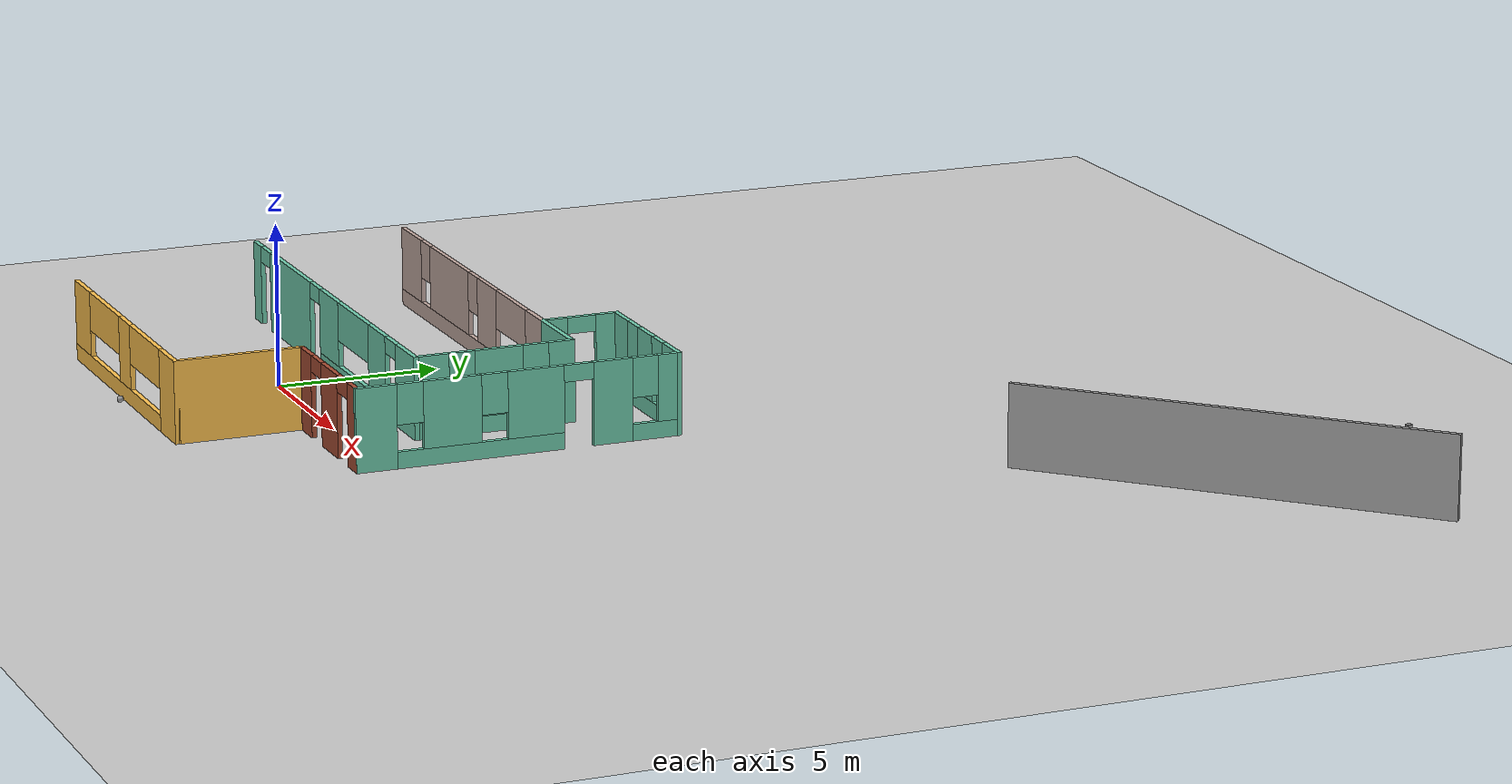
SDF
<sdf version="1.6">
 <world name="default">
  <model name="ground_plane">
   <static>1</static>
   <link name="link">
    <collision name="collision">
     <geometry><plane><normal>0 0 1</normal><size>100 100</size></plane></geometry>
     <surface>
      <contact><collide_bitmask>65535</collide_bitmask></contact>
      <friction><ode><mu>100</mu><mu2>50</mu2></ode></friction>
     </surface>
    </collision>
    <visual name="visual">
     <cast_shadows>0</cast_shadows>
     <geometry><plane><normal>0 0 1</normal><size>100 100</size></plane></geometry>
     <material>
      <script><uri>file://media/materials/scripts/gazebo.material</uri><name>Gazebo/Grey</name></script>
     </material>
    </visual>
   </link>
  </model>
  <model name="building">
   <pose>7.75122 8.09541 0 0 -0 0</pose>
   <link name="Wall_0">
    <pose>-8.08622 -12.7354 0 0 -0 3.14159</pose>
    <visual name="Wall_0_Visual_0">
     <pose>-4.28694 0 1.25 0 -0 0</pose>
     <geometry><box><size>1.42611 0.15 2.5</size></box></geometry>
     <material>
      <script><uri>file://media/materials/scripts/gazebo.material</uri><name>Gazebo/Grey</name></script>
      <ambient>1 0.764706 0.305882 1</ambient>
     </material>
     <meta><layer>0</layer></meta>
    </visual>
    <collision name="Wall_0_Collision_0">
     <geometry><box><size>1.42611 0.15 2.5</size></box></geometry>
     <pose>-4.28694 0 1.25 0 -0 0</pose>
    </collision>
    <visual name="Wall_0_Visual_1">
     <pose>0.713057 0 0.25 0 -0 0</pose>
     <geometry><box><size>8.57389 0.15 0.5</size></box></geometry>
     <material>
      <script><uri>file://media/materials/scripts/gazebo.material</uri><name>Gazebo/Grey</name></script>
      <ambient>1 0.764706 0.305882 1</ambient>
     </material>
     <meta><layer>0</layer></meta>
    </visual>
    <collision name="Wall_0_Collision_1">
     <geometry><box><size>8.57389 0.15 0.5</size></box></geometry>
     <pose>0.713057 0 0.25 0 -0 0</pose>
    </collision>
    <visual name="Wall_0_Visual_2">
     <pose>-0.101719 0 1.5 0 -0 0</pose>
     <geometry><box><size>1.08588 0.15 2</size></box></geometry>
     <material>
      <script><uri>file://media/materials/scripts/gazebo.material</uri><name>Gazebo/Grey</name></script>
      <ambient>1 0.764706 0.305882 1</ambient>
     </material>
     <meta><layer>0</layer></meta>
    </visual>
    <collision name="Wall_0_Collision_2">
     <geometry><box><size>1.08588 0.15 2</size></box></geometry>
     <pose>-0.101719 0 1.5 0 -0 0</pose>
    </collision>
    <visual name="Wall_0_Visual_3">
     <pose>4.22325 0 1.5 0 -0 0</pose>
     <geometry><box><size>1.55351 0.15 2</size></box></geometry>
     <material>
      <script><uri>file://media/materials/scripts/gazebo.material</uri><name>Gazebo/Grey</name></script>
      <ambient>1 0.764706 0.305882 1</ambient>
     </material>
     <meta><layer>0</layer></meta>
    </visual>
    <collision name="Wall_0_Collision_3">
     <geometry><box><size>1.55351 0.15 2</size></box></geometry>
     <pose>4.22325 0 1.5 0 -0 0</pose>
    </collision>
    <visual name="Wall_0_Visual_4">
     <pose>-2.10927 0 1.9 0 -0 0</pose>
     <geometry><box><size>2.92923 0.15 1.2</size></box></geometry>
     <material>
      <script><uri>file://media/materials/scripts/gazebo.material</uri><name>Gazebo/Grey</name></script>
      <ambient>1 0.764706 0.305882 1</ambient>
     </material>
     <meta><layer>0</layer></meta>
    </visual>
    <collision name="Wall_0_Collision_4">
     <geometry><box><size>2.92923 0.15 1.2</size></box></geometry>
     <pose>-2.10927 0 1.9 0 -0 0</pose>
    </collision>
    <visual name="Wall_0_Visual_5">
     <pose>1.94386 0 1.9 0 -0 0</pose>
     <geometry><box><size>3.00527 0.15 1.2</size></box></geometry>
     <material>
      <script><uri>file://media/materials/scripts/gazebo.material</uri><name>Gazebo/Grey</name></script>
      <ambient>1 0.764706 0.305882 1</ambient>
     </material>
     <meta><layer>0</layer></meta>
    </visual>
    <collision name="Wall_0_Collision_5">
     <geometry><box><size>3.00527 0.15 1.2</size></box></geometry>
     <pose>1.94386 0 1.9 0 -0 0</pose>
    </collision>
   </link>
   <link name="Wall_19">
    <collision name="Wall_19_Collision">
     <geometry><box><size>13.2246 0.15 2.5</size></box></geometry>
     <pose>0 0 1.25 0 -0 0</pose>
    </collision>
    <visual name="Wall_19_Visual">
     <pose>0 0 1.25 0 -0 0</pose>
     <geometry><box><size>13.2246 0.15 2.5</size></box></geometry>
     <material>
      <script><uri>file://media/materials/scripts/gazebo.material</uri><name>Gazebo/Grey</name></script>
      <ambient>1 1 1 1</ambient>
     </material>
     <meta><layer>0</layer></meta>
    </visual>
    <pose>13.1096 12.9319 0 0 0 -2.37763</pose>
   </link>
   <link name="Wall_20">
    <collision name="Wall_20_Collision">
     <geometry><box><size>0.15 0.15 2.5</size></box></geometry>
     <pose>0 0 1.25 0 -0 0</pose>
    </collision>
    <visual name="Wall_20_Visual">
     <pose>0 0 1.25 0 -0 0</pose>
     <geometry><box><size>0.15 0.15 2.5</size></box></geometry>
     <material>
      <script><uri>file://media/materials/scripts/gazebo.material</uri><name>Gazebo/Grey</name></script>
      <ambient>1 1 1 1</ambient>
     </material>
     <meta><layer>0</layer></meta>
    </visual>
    <pose>16.475 16.6544 0 0 -0 0</pose>
   </link>
   <link name="Wall_22">
    <pose>1.65837 -3.96041 0 0 -0 1.5708</pose>
    <visual name="Wall_22_Visual_0">
     <pose>-4.3788 0 1.25 0 -0 0</pose>
     <geometry><box><size>1.2424 0.15 2.5</size></box></geometry>
     <material>
      <script><uri>file://media/materials/scripts/gazebo.material</uri><name>Gazebo/Grey</name></script>
      <ambient>0.435294 0.796078 0.67451 1</ambient>
     </material>
     <meta><layer>0</layer></meta>
    </visual>
    <collision name="Wall_22_Collision_0">
     <geometry><box><size>1.2424 0.15 2.5</size></box></geometry>
     <pose>-4.3788 0 1.25 0 -0 0</pose>
    </collision>
    <visual name="Wall_22_Visual_1">
     <pose>2.84528 0 1.25 0 -0 0</pose>
     <geometry><box><size>1.21212 0.15 2.5</size></box></geometry>
     <material>
      <script><uri>file://media/materials/scripts/gazebo.material</uri><name>Gazebo/Grey</name></script>
      <ambient>0.435294 0.796078 0.67451 1</ambient>
     </material>
     <meta><layer>0</layer></meta>
    </visual>
    <collision name="Wall_22_Collision_1">
     <geometry><box><size>1.21212 0.15 2.5</size></box></geometry>
     <pose>2.84528 0 1.25 0 -0 0</pose>
    </collision>
    <visual name="Wall_22_Visual_2">
     <pose>-1.20919 0 0.25 0 -0 0</pose>
     <geometry><box><size>5.09682 0.15 0.5</size></box></geometry>
     <material>
      <script><uri>file://media/materials/scripts/gazebo.material</uri><name>Gazebo/Grey</name></script>
      <ambient>0.435294 0.796078 0.67451 1</ambient>
     </material>
     <meta><layer>0</layer></meta>
    </visual>
    <collision name="Wall_22_Collision_2">
     <geometry><box><size>5.09682 0.15 0.5</size></box></geometry>
     <pose>-1.20919 0 0.25 0 -0 0</pose>
    </collision>
    <visual name="Wall_22_Visual_3">
     <pose>4.22567 0 0.25 0 -0 0</pose>
     <geometry><box><size>1.54866 0.15 0.5</size></box></geometry>
     <material>
      <script><uri>file://media/materials/scripts/gazebo.material</uri><name>Gazebo/Grey</name></script>
      <ambient>0.435294 0.796078 0.67451 1</ambient>
     </material>
     <meta><layer>0</layer></meta>
    </visual>
    <collision name="Wall_22_Collision_3">
     <geometry><box><size>1.54866 0.15 0.5</size></box></geometry>
     <pose>4.22567 0 0.25 0 -0 0</pose>
    </collision>
    <visual name="Wall_22_Visual_4">
     <pose>-2.07246 0 1.5 0 -0 0</pose>
     <geometry><box><size>1.77028 0.15 2</size></box></geometry>
     <material>
      <script><uri>file://media/materials/scripts/gazebo.material</uri><name>Gazebo/Grey</name></script>
      <ambient>0.435294 0.796078 0.67451 1</ambient>
     </material>
     <meta><layer>0</layer></meta>
    </visual>
    <collision name="Wall_22_Collision_4">
     <geometry><box><size>1.77028 0.15 2</size></box></geometry>
     <pose>-2.07246 0 1.5 0 -0 0</pose>
    </collision>
    <visual name="Wall_22_Visual_5">
     <pose>0.475947 0 1.5 0 -0 0</pose>
     <geometry><box><size>1.72654 0.15 2</size></box></geometry>
     <material>
      <script><uri>file://media/materials/scripts/gazebo.material</uri><name>Gazebo/Grey</name></script>
      <ambient>0.435294 0.796078 0.67451 1</ambient>
     </material>
     <meta><layer>0</layer></meta>
    </visual>
    <collision name="Wall_22_Collision_5">
     <geometry><box><size>1.72654 0.15 2</size></box></geometry>
     <pose>0.475947 0 1.5 0 -0 0</pose>
    </collision>
    <visual name="Wall_22_Visual_6">
     <pose>0.475947 0 1.5 0 -0 0</pose>
     <geometry><box><size>1.72654 0.15 2</size></box></geometry>
     <material>
      <script><uri>file://media/materials/scripts/gazebo.material</uri><name>Gazebo/Grey</name></script>
      <ambient>0.435294 0.796078 0.67451 1</ambient>
     </material>
     <meta><layer>0</layer></meta>
    </visual>
    <collision name="Wall_22_Collision_6">
     <geometry><box><size>1.72654 0.15 2</size></box></geometry>
     <pose>0.475947 0 1.5 0 -0 0</pose>
    </collision>
    <visual name="Wall_22_Visual_7">
     <pose>4.62567 0 1.5 0 -0 0</pose>
     <geometry><box><size>0.748656 0.15 2</size></box></geometry>
     <material>
      <script><uri>file://media/materials/scripts/gazebo.material</uri><name>Gazebo/Grey</name></script>
      <ambient>0.435294 0.796078 0.67451 1</ambient>
     </material>
     <meta><layer>0</layer></meta>
    </visual>
    <collision name="Wall_22_Collision_7">
     <geometry><box><size>0.748656 0.15 2</size></box></geometry>
     <pose>4.62567 0 1.5 0 -0 0</pose>
    </collision>
    <visual name="Wall_22_Visual_8">
     <pose>-3.3576 0 1.9 0 -0 0</pose>
     <geometry><box><size>0.8 0.15 1.2</size></box></geometry>
     <material>
      <script><uri>file://media/materials/scripts/gazebo.material</uri><name>Gazebo/Grey</name></script>
      <ambient>0.435294 0.796078 0.67451 1</ambient>
     </material>
     <meta><layer>0</layer></meta>
    </visual>
    <collision name="Wall_22_Collision_8">
     <geometry><box><size>0.8 0.15 1.2</size></box></geometry>
     <pose>-3.3576 0 1.9 0 -0 0</pose>
    </collision>
    <visual name="Wall_22_Visual_9">
     <pose>3.85134 0 1.9 0 -0 0</pose>
     <geometry><box><size>0.8 0.15 1.2</size></box></geometry>
     <material>
      <script><uri>file://media/materials/scripts/gazebo.material</uri><name>Gazebo/Grey</name></script>
      <ambient>0.435294 0.796078 0.67451 1</ambient>
     </material>
     <meta><layer>0</layer></meta>
    </visual>
    <collision name="Wall_22_Collision_9">
     <geometry><box><size>0.8 0.15 1.2</size></box></geometry>
     <pose>3.85134 0 1.9 0 -0 0</pose>
    </collision>
    <visual name="Wall_22_Visual_10">
     <pose>-0.787325 0 1.9 0 -0 0</pose>
     <geometry><box><size>0.8 0.15 1.2</size></box></geometry>
     <material>
      <script><uri>file://media/materials/scripts/gazebo.material</uri><name>Gazebo/Grey</name></script>
      <ambient>0.435294 0.796078 0.67451 1</ambient>
     </material>
     <meta><layer>0</layer></meta>
    </visual>
    <collision name="Wall_22_Collision_10">
     <geometry><box><size>0.8 0.15 1.2</size></box></geometry>
     <pose>-0.787325 0 1.9 0 -0 0</pose>
    </collision>
    <visual name="Wall_22_Visual_11">
     <pose>1.78922 0 2.25 0 -0 0</pose>
     <geometry><box><size>0.9 0.15 0.5</size></box></geometry>
     <material>
      <script><uri>file://media/materials/scripts/gazebo.material</uri><name>Gazebo/Grey</name></script>
      <ambient>0.435294 0.796078 0.67451 1</ambient>
     </material>
     <meta><layer>0</layer></meta>
    </visual>
    <collision name="Wall_22_Collision_11">
     <geometry><box><size>0.9 0.15 0.5</size></box></geometry>
     <pose>1.78922 0 2.25 0 -0 0</pose>
    </collision>
    <visual name="Wall_22_Visual_12">
     <pose>1.78922 0 2.25 0 -0 0</pose>
     <geometry><box><size>0.9 0.15 0.5</size></box></geometry>
     <material>
      <script><uri>file://media/materials/scripts/gazebo.material</uri><name>Gazebo/Grey</name></script>
      <ambient>0.435294 0.796078 0.67451 1</ambient>
     </material>
     <meta><layer>0</layer></meta>
    </visual>
    <collision name="Wall_22_Collision_12">
     <geometry><box><size>0.9 0.15 0.5</size></box></geometry>
     <pose>1.78922 0 2.25 0 -0 0</pose>
    </collision>
   </link>
   <link name="Wall_23">
    <pose>-0.766634 0.964587 0 0 -0 3.14159</pose>
    <visual name="Wall_23_Visual_0">
     <pose>-1.90941 0 1.25 0 -0 0</pose>
     <geometry><box><size>1.18118 0.15 2.5</size></box></geometry>
     <material>
      <script><uri>file://media/materials/scripts/gazebo.material</uri><name>Gazebo/Grey</name></script>
      <ambient>0.435294 0.796078 0.67451 1</ambient>
     </material>
     <meta><layer>0</layer></meta>
    </visual>
    <collision name="Wall_23_Collision_0">
     <geometry><box><size>1.18118 0.15 2.5</size></box></geometry>
     <pose>-1.90941 0 1.25 0 -0 0</pose>
    </collision>
    <visual name="Wall_23_Visual_1">
     <pose>0.590591 0 0.25 0 -0 0</pose>
     <geometry><box><size>3.81882 0.15 0.5</size></box></geometry>
     <material>
      <script><uri>file://media/materials/scripts/gazebo.material</uri><name>Gazebo/Grey</name></script>
      <ambient>0.435294 0.796078 0.67451 1</ambient>
     </material>
     <meta><layer>0</layer></meta>
    </visual>
    <collision name="Wall_23_Collision_1">
     <geometry><box><size>3.81882 0.15 0.5</size></box></geometry>
     <pose>0.590591 0 0.25 0 -0 0</pose>
    </collision>
    <visual name="Wall_23_Visual_2">
     <pose>0.031729 0 1.5 0 -0 0</pose>
     <geometry><box><size>1.10109 0.15 2</size></box></geometry>
     <material>
      <script><uri>file://media/materials/scripts/gazebo.material</uri><name>Gazebo/Grey</name></script>
      <ambient>0.435294 0.796078 0.67451 1</ambient>
     </material>
     <meta><layer>0</layer></meta>
    </visual>
    <collision name="Wall_23_Collision_2">
     <geometry><box><size>1.10109 0.15 2</size></box></geometry>
     <pose>0.031729 0 1.5 0 -0 0</pose>
    </collision>
    <visual name="Wall_23_Visual_3">
     <pose>1.94114 0 1.5 0 -0 0</pose>
     <geometry><box><size>1.11772 0.15 2</size></box></geometry>
     <material>
      <script><uri>file://media/materials/scripts/gazebo.material</uri><name>Gazebo/Grey</name></script>
      <ambient>0.435294 0.796078 0.67451 1</ambient>
     </material>
     <meta><layer>0</layer></meta>
    </visual>
    <collision name="Wall_23_Collision_3">
     <geometry><box><size>1.11772 0.15 2</size></box></geometry>
     <pose>1.94114 0 1.5 0 -0 0</pose>
    </collision>
    <visual name="Wall_23_Visual_4">
     <pose>-0.918818 0 1.9 0 -0 0</pose>
     <geometry><box><size>0.8 0.15 1.2</size></box></geometry>
     <material>
      <script><uri>file://media/materials/scripts/gazebo.material</uri><name>Gazebo/Grey</name></script>
      <ambient>0.435294 0.796078 0.67451 1</ambient>
     </material>
     <meta><layer>0</layer></meta>
    </visual>
    <collision name="Wall_23_Collision_4">
     <geometry><box><size>0.8 0.15 1.2</size></box></geometry>
     <pose>-0.918818 0 1.9 0 -0 0</pose>
    </collision>
    <visual name="Wall_23_Visual_5">
     <pose>0.982276 0 1.9 0 -0 0</pose>
     <geometry><box><size>0.8 0.15 1.2</size></box></geometry>
     <material>
      <script><uri>file://media/materials/scripts/gazebo.material</uri><name>Gazebo/Grey</name></script>
      <ambient>0.435294 0.796078 0.67451 1</ambient>
     </material>
     <meta><layer>0</layer></meta>
    </visual>
    <collision name="Wall_23_Collision_5">
     <geometry><box><size>0.8 0.15 1.2</size></box></geometry>
     <pose>0.982276 0 1.9 0 -0 0</pose>
    </collision>
   </link>
   <link name="Wall_24">
    <pose>-3.19163 -0.210413 0 0 0 -1.5708</pose>
    <visual name="Wall_24_Visual_0">
     <pose>-0.870254 0 1.25 0 -0 0</pose>
     <geometry><box><size>0.759491 0.15 2.5</size></box></geometry>
     <material>
      <script><uri>file://media/materials/scripts/gazebo.material</uri><name>Gazebo/Grey</name></script>
      <ambient>0.435294 0.796078 0.67451 1</ambient>
     </material>
     <meta><layer>0</layer></meta>
    </visual>
    <collision name="Wall_24_Collision_0">
     <geometry><box><size>0.759491 0.15 2.5</size></box></geometry>
     <pose>-0.870254 0 1.25 0 -0 0</pose>
    </collision>
    <visual name="Wall_24_Visual_1">
     <pose>0.829746 0 1.25 0 -0 0</pose>
     <geometry><box><size>0.840509 0.15 2.5</size></box></geometry>
     <material>
      <script><uri>file://media/materials/scripts/gazebo.material</uri><name>Gazebo/Grey</name></script>
      <ambient>0.435294 0.796078 0.67451 1</ambient>
     </material>
     <meta><layer>0</layer></meta>
    </visual>
    <collision name="Wall_24_Collision_1">
     <geometry><box><size>0.840509 0.15 2.5</size></box></geometry>
     <pose>0.829746 0 1.25 0 -0 0</pose>
    </collision>
    <visual name="Wall_24_Visual_2">
     <pose>-0.040509 0 2.25 0 -0 0</pose>
     <geometry><box><size>0.9 0.15 0.5</size></box></geometry>
     <material>
      <script><uri>file://media/materials/scripts/gazebo.material</uri><name>Gazebo/Grey</name></script>
      <ambient>0.435294 0.796078 0.67451 1</ambient>
     </material>
     <meta><layer>0</layer></meta>
    </visual>
    <collision name="Wall_24_Collision_2">
     <geometry><box><size>0.9 0.15 0.5</size></box></geometry>
     <pose>-0.040509 0 2.25 0 -0 0</pose>
    </collision>
   </link>
   <link name="Wall_25">
    <collision name="Wall_25_Collision">
     <geometry><box><size>2.5 0.15 2.5</size></box></geometry>
     <pose>0 0 1.25 0 -0 0</pose>
    </collision>
    <visual name="Wall_25_Visual">
     <pose>0 0 1.25 0 -0 0</pose>
     <geometry><box><size>2.5 0.15 2.5</size></box></geometry>
     <material>
      <script><uri>file://media/materials/scripts/gazebo.material</uri><name>Gazebo/Grey</name></script>
      <ambient>0.435294 0.796078 0.67451 1</ambient>
     </material>
     <meta><layer>0</layer></meta>
    </visual>
    <pose>-2.01663 -1.38541 0 0 -0 0</pose>
   </link>
   <link name="Wall_26">
    <pose>-0.841634 -3.81041 0 0 0 -1.5708</pose>
    <visual name="Wall_26_Visual_0">
     <pose>-2.09158 0 1.25 0 -0 0</pose>
     <geometry><box><size>0.816847 0.15 2.5</size></box></geometry>
     <material>
      <script><uri>file://media/materials/scripts/gazebo.material</uri><name>Gazebo/Grey</name></script>
      <ambient>0.435294 0.796078 0.67451 1</ambient>
     </material>
     <meta><layer>0</layer></meta>
    </visual>
    <collision name="Wall_26_Collision_0">
     <geometry><box><size>0.816847 0.15 2.5</size></box></geometry>
     <pose>-2.09158 0 1.25 0 -0 0</pose>
    </collision>
    <visual name="Wall_26_Visual_1">
     <pose>0.408424 0 0.25 0 -0 0</pose>
     <geometry><box><size>4.18315 0.15 0.5</size></box></geometry>
     <material>
      <script><uri>file://media/materials/scripts/gazebo.material</uri><name>Gazebo/Grey</name></script>
      <ambient>0.435294 0.796078 0.67451 1</ambient>
     </material>
     <meta><layer>0</layer></meta>
    </visual>
    <collision name="Wall_26_Collision_1">
     <geometry><box><size>4.18315 0.15 0.5</size></box></geometry>
     <pose>0.408424 0 0.25 0 -0 0</pose>
    </collision>
    <visual name="Wall_26_Visual_2">
     <pose>-0.134892 0 1.5 0 -0 0</pose>
     <geometry><box><size>1.49652 0.15 2</size></box></geometry>
     <material>
      <script><uri>file://media/materials/scripts/gazebo.material</uri><name>Gazebo/Grey</name></script>
      <ambient>0.435294 0.796078 0.67451 1</ambient>
     </material>
     <meta><layer>0</layer></meta>
    </visual>
    <collision name="Wall_26_Collision_2">
     <geometry><box><size>1.49652 0.15 2</size></box></geometry>
     <pose>-0.134892 0 1.5 0 -0 0</pose>
    </collision>
    <visual name="Wall_26_Visual_3">
     <pose>1.95668 0 1.5 0 -0 0</pose>
     <geometry><box><size>1.08663 0.15 2</size></box></geometry>
     <material>
      <script><uri>file://media/materials/scripts/gazebo.material</uri><name>Gazebo/Grey</name></script>
      <ambient>0.435294 0.796078 0.67451 1</ambient>
     </material>
     <meta><layer>0</layer></meta>
    </visual>
    <collision name="Wall_26_Collision_3">
     <geometry><box><size>1.08663 0.15 2</size></box></geometry>
     <pose>1.95668 0 1.5 0 -0 0</pose>
    </collision>
    <visual name="Wall_26_Visual_4">
     <pose>-1.28315 0 1.9 0 -0 0</pose>
     <geometry><box><size>0.8 0.15 1.2</size></box></geometry>
     <material>
      <script><uri>file://media/materials/scripts/gazebo.material</uri><name>Gazebo/Grey</name></script>
      <ambient>0.435294 0.796078 0.67451 1</ambient>
     </material>
     <meta><layer>0</layer></meta>
    </visual>
    <collision name="Wall_26_Collision_4">
     <geometry><box><size>0.8 0.15 1.2</size></box></geometry>
     <pose>-1.28315 0 1.9 0 -0 0</pose>
    </collision>
    <visual name="Wall_26_Visual_5">
     <pose>1.01337 0 1.9 0 -0 0</pose>
     <geometry><box><size>0.8 0.15 1.2</size></box></geometry>
     <material>
      <script><uri>file://media/materials/scripts/gazebo.material</uri><name>Gazebo/Grey</name></script>
      <ambient>0.435294 0.796078 0.67451 1</ambient>
     </material>
     <meta><layer>0</layer></meta>
    </visual>
    <collision name="Wall_26_Collision_5">
     <geometry><box><size>0.8 0.15 1.2</size></box></geometry>
     <pose>1.01337 0 1.9 0 -0 0</pose>
    </collision>
   </link>
   <link name="Wall_27">
    <pose>-8.14163 -6.23541 0 0 -0 3.14159</pose>
    <visual name="Wall_27_Visual_0">
     <pose>-6.57656 0 1.25 0 -0 0</pose>
     <geometry><box><size>1.59689 0.15 2.5</size></box></geometry>
     <material>
      <script><uri>file://media/materials/scripts/gazebo.material</uri><name>Gazebo/Grey</name></script>
      <ambient>0.435294 0.796078 0.67451 1</ambient>
     </material>
     <meta><layer>0</layer></meta>
    </visual>
    <collision name="Wall_27_Collision_0">
     <geometry><box><size>1.59689 0.15 2.5</size></box></geometry>
     <pose>-6.57656 0 1.25 0 -0 0</pose>
    </collision>
    <visual name="Wall_27_Visual_1">
     <pose>-4.12443 0 1.25 0 -0 0</pose>
     <geometry><box><size>1.50736 0.15 2.5</size></box></geometry>
     <material>
      <script><uri>file://media/materials/scripts/gazebo.material</uri><name>Gazebo/Grey</name></script>
      <ambient>0.435294 0.796078 0.67451 1</ambient>
     </material>
     <meta><layer>0</layer></meta>
    </visual>
    <collision name="Wall_27_Collision_1">
     <geometry><box><size>1.50736 0.15 2.5</size></box></geometry>
     <pose>-4.12443 0 1.25 0 -0 0</pose>
    </collision>
    <visual name="Wall_27_Visual_2">
     <pose>3.86558 0 1.25 0 -0 0</pose>
     <geometry><box><size>3.82992 0.15 2.5</size></box></geometry>
     <material>
      <script><uri>file://media/materials/scripts/gazebo.material</uri><name>Gazebo/Grey</name></script>
      <ambient>0.435294 0.796078 0.67451 1</ambient>
     </material>
     <meta><layer>0</layer></meta>
    </visual>
    <collision name="Wall_27_Collision_2">
     <geometry><box><size>3.82992 0.15 2.5</size></box></geometry>
     <pose>3.86558 0 1.25 0 -0 0</pose>
    </collision>
    <visual name="Wall_27_Visual_3">
     <pose>7.02777 0 1.25 0 -0 0</pose>
     <geometry><box><size>0.694461 0.15 2.5</size></box></geometry>
     <material>
      <script><uri>file://media/materials/scripts/gazebo.material</uri><name>Gazebo/Grey</name></script>
      <ambient>0.435294 0.796078 0.67451 1</ambient>
     </material>
     <meta><layer>0</layer></meta>
    </visual>
    <collision name="Wall_27_Collision_3">
     <geometry><box><size>0.694461 0.15 2.5</size></box></geometry>
     <pose>7.02777 0 1.25 0 -0 0</pose>
    </collision>
    <visual name="Wall_27_Visual_4">
     <pose>-1.16007 0 0.25 0 -0 0</pose>
     <geometry><box><size>4.42137 0.15 0.5</size></box></geometry>
     <material>
      <script><uri>file://media/materials/scripts/gazebo.material</uri><name>Gazebo/Grey</name></script>
      <ambient>0.435294 0.796078 0.67451 1</ambient>
     </material>
     <meta><layer>0</layer></meta>
    </visual>
    <collision name="Wall_27_Collision_4">
     <geometry><box><size>4.42137 0.15 0.5</size></box></geometry>
     <pose>-1.16007 0 0.25 0 -0 0</pose>
    </collision>
    <visual name="Wall_27_Visual_5">
     <pose>0.198082 0 1.5 0 -0 0</pose>
     <geometry><box><size>1.70507 0.15 2</size></box></geometry>
     <material>
      <script><uri>file://media/materials/scripts/gazebo.material</uri><name>Gazebo/Grey</name></script>
      <ambient>0.435294 0.796078 0.67451 1</ambient>
     </material>
     <meta><layer>0</layer></meta>
    </visual>
    <collision name="Wall_27_Collision_5">
     <geometry><box><size>1.70507 0.15 2</size></box></geometry>
     <pose>0.198082 0 1.5 0 -0 0</pose>
    </collision>
    <visual name="Wall_27_Visual_6">
     <pose>-2.0126 0 1.9 0 -0 0</pose>
     <geometry><box><size>2.7163 0.15 1.2</size></box></geometry>
     <material>
      <script><uri>file://media/materials/scripts/gazebo.material</uri><name>Gazebo/Grey</name></script>
      <ambient>0.435294 0.796078 0.67451 1</ambient>
     </material>
     <meta><layer>0</layer></meta>
    </visual>
    <collision name="Wall_27_Collision_6">
     <geometry><box><size>2.7163 0.15 1.2</size></box></geometry>
     <pose>-2.0126 0 1.9 0 -0 0</pose>
    </collision>
    <visual name="Wall_27_Visual_7">
     <pose>-5.32811 0 2.25 0 -0 0</pose>
     <geometry><box><size>0.9 0.15 0.5</size></box></geometry>
     <material>
      <script><uri>file://media/materials/scripts/gazebo.material</uri><name>Gazebo/Grey</name></script>
      <ambient>0.435294 0.796078 0.67451 1</ambient>
     </material>
     <meta><layer>0</layer></meta>
    </visual>
    <collision name="Wall_27_Collision_7">
     <geometry><box><size>0.9 0.15 0.5</size></box></geometry>
     <pose>-5.32811 0 2.25 0 -0 0</pose>
    </collision>
    <visual name="Wall_27_Visual_8">
     <pose>6.23054 0 2.25 0 -0 0</pose>
     <geometry><box><size>0.9 0.15 0.5</size></box></geometry>
     <material>
      <script><uri>file://media/materials/scripts/gazebo.material</uri><name>Gazebo/Grey</name></script>
      <ambient>0.435294 0.796078 0.67451 1</ambient>
     </material>
     <meta><layer>0</layer></meta>
    </visual>
    <collision name="Wall_27_Collision_8">
     <geometry><box><size>0.9 0.15 0.5</size></box></geometry>
     <pose>6.23054 0 2.25 0 -0 0</pose>
    </collision>
    <visual name="Wall_27_Visual_9">
     <pose>1.50062 0 2.25 0 -0 0</pose>
     <geometry><box><size>0.9 0.15 0.5</size></box></geometry>
     <material>
      <script><uri>file://media/materials/scripts/gazebo.material</uri><name>Gazebo/Grey</name></script>
      <ambient>0.435294 0.796078 0.67451 1</ambient>
     </material>
     <meta><layer>0</layer></meta>
    </visual>
    <collision name="Wall_27_Collision_9">
     <geometry><box><size>0.9 0.15 0.5</size></box></geometry>
     <pose>1.50062 0 2.25 0 -0 0</pose>
    </collision>
   </link>
   <link name="Wall_3">
    <collision name="Wall_3_Collision">
     <geometry><box><size>4 0.15 2.5</size></box></geometry>
     <pose>0 0 1.25 0 -0 0</pose>
    </collision>
    <visual name="Wall_3_Visual">
     <pose>0 0 1.25 0 -0 0</pose>
     <geometry><box><size>4 0.15 2.5</size></box></geometry>
     <material>
      <script><uri>file://media/materials/scripts/gazebo.material</uri><name>Gazebo/Grey</name></script>
      <ambient>1 0.764706 0.305882 1</ambient>
     </material>
     <meta><layer>0</layer></meta>
    </visual>
    <pose>-3.16122 -10.8104 0 0 -0 1.5708</pose>
   </link>
   <link name="Wall_37">
    <pose>-9.24163 -1.38541 0 0 -0 3.14159</pose>
    <visual name="Wall_37_Visual_0">
     <pose>-5.45757 0 1.25 0 -0 0</pose>
     <geometry><box><size>1.33486 0.15 2.5</size></box></geometry>
     <material>
      <script><uri>file://media/materials/scripts/gazebo.material</uri><name>Gazebo/Grey</name></script>
      <ambient>0.760784 0.662745 0.627451 1</ambient>
     </material>
     <meta><layer>0</layer></meta>
    </visual>
    <collision name="Wall_37_Collision_0">
     <geometry><box><size>1.33486 0.15 2.5</size></box></geometry>
     <pose>-5.45757 0 1.25 0 -0 0</pose>
    </collision>
    <visual name="Wall_37_Visual_1">
     <pose>0.667431 0 0.25 0 -0 0</pose>
     <geometry><box><size>10.9151 0.15 0.5</size></box></geometry>
     <material>
      <script><uri>file://media/materials/scripts/gazebo.material</uri><name>Gazebo/Grey</name></script>
      <ambient>0.760784 0.662745 0.627451 1</ambient>
     </material>
     <meta><layer>0</layer></meta>
    </visual>
    <collision name="Wall_37_Collision_1">
     <geometry><box><size>10.9151 0.15 0.5</size></box></geometry>
     <pose>0.667431 0 0.25 0 -0 0</pose>
    </collision>
    <visual name="Wall_37_Visual_2">
     <pose>-1.48527 0 1.5 0 -0 0</pose>
     <geometry><box><size>1.60298 0.15 2</size></box></geometry>
     <material>
      <script><uri>file://media/materials/scripts/gazebo.material</uri><name>Gazebo/Grey</name></script>
      <ambient>0.760784 0.662745 0.627451 1</ambient>
     </material>
     <meta><layer>0</layer></meta>
    </visual>
    <collision name="Wall_37_Collision_2">
     <geometry><box><size>1.60298 0.15 2</size></box></geometry>
     <pose>-1.48527 0 1.5 0 -0 0</pose>
    </collision>
    <visual name="Wall_37_Visual_3">
     <pose>1.83024 0 1.5 0 -0 0</pose>
     <geometry><box><size>3.42803 0.15 2</size></box></geometry>
     <material>
      <script><uri>file://media/materials/scripts/gazebo.material</uri><name>Gazebo/Grey</name></script>
      <ambient>0.760784 0.662745 0.627451 1</ambient>
     </material>
     <meta><layer>0</layer></meta>
    </visual>
    <collision name="Wall_37_Collision_3">
     <geometry><box><size>3.42803 0.15 2</size></box></geometry>
     <pose>1.83024 0 1.5 0 -0 0</pose>
    </collision>
    <visual name="Wall_37_Visual_4">
     <pose>5.23463 0 1.5 0 -0 0</pose>
     <geometry><box><size>1.78074 0.15 2</size></box></geometry>
     <material>
      <script><uri>file://media/materials/scripts/gazebo.material</uri><name>Gazebo/Grey</name></script>
      <ambient>0.760784 0.662745 0.627451 1</ambient>
     </material>
     <meta><layer>0</layer></meta>
    </visual>
    <collision name="Wall_37_Collision_4">
     <geometry><box><size>1.78074 0.15 2</size></box></geometry>
     <pose>5.23463 0 1.5 0 -0 0</pose>
    </collision>
    <visual name="Wall_37_Visual_5">
     <pose>-3.53845 0 1.9 0 -0 0</pose>
     <geometry><box><size>2.50338 0.15 1.2</size></box></geometry>
     <material>
      <script><uri>file://media/materials/scripts/gazebo.material</uri><name>Gazebo/Grey</name></script>
      <ambient>0.760784 0.662745 0.627451 1</ambient>
     </material>
     <meta><layer>0</layer></meta>
    </visual>
    <collision name="Wall_37_Collision_5">
     <geometry><box><size>2.50338 0.15 1.2</size></box></geometry>
     <pose>-3.53845 0 1.9 0 -0 0</pose>
    </collision>
    <visual name="Wall_37_Visual_6">
     <pose>-0.283776 0 1.9 0 -0 0</pose>
     <geometry><box><size>0.8 0.15 1.2</size></box></geometry>
     <material>
      <script><uri>file://media/materials/scripts/gazebo.material</uri><name>Gazebo/Grey</name></script>
      <ambient>0.760784 0.662745 0.627451 1</ambient>
     </material>
     <meta><layer>0</layer></meta>
    </visual>
    <collision name="Wall_37_Collision_6">
     <geometry><box><size>0.8 0.15 1.2</size></box></geometry>
     <pose>-0.283776 0 1.9 0 -0 0</pose>
    </collision>
    <visual name="Wall_37_Visual_7">
     <pose>3.94426 0 1.9 0 -0 0</pose>
     <geometry><box><size>0.8 0.15 1.2</size></box></geometry>
     <material>
      <script><uri>file://media/materials/scripts/gazebo.material</uri><name>Gazebo/Grey</name></script>
      <ambient>0.760784 0.662745 0.627451 1</ambient>
     </material>
     <meta><layer>0</layer></meta>
    </visual>
    <collision name="Wall_37_Collision_7">
     <geometry><box><size>0.8 0.15 1.2</size></box></geometry>
     <pose>3.94426 0 1.9 0 -0 0</pose>
    </collision>
   </link>
   <link name="Wall_4">
    <collision name="Wall_4_Collision">
     <geometry><box><size>0.15 0.15 2.5</size></box></geometry>
     <pose>0 0 1.25 0 -0 0</pose>
    </collision>
    <visual name="Wall_4_Visual">
     <pose>0 0 1.25 0 -0 0</pose>
     <geometry><box><size>0.15 0.15 2.5</size></box></geometry>
     <material>
      <script><uri>file://media/materials/scripts/gazebo.material</uri><name>Gazebo/Grey</name></script>
      <ambient>1 1 1 1</ambient>
     </material>
     <meta><layer>0</layer></meta>
    </visual>
    <pose>-3.16122 -8.88541 0 0 -0 0</pose>
   </link>
   <link name="Wall_6">
    <pose>-0.751425 -8.88541 0 0 -0 0</pose>
    <visual name="Wall_6_Visual_0">
     <pose>-1.95975 0 1.25 0 -0 0</pose>
     <geometry><box><size>1.05008 0.15 2.5</size></box></geometry>
     <material>
      <script><uri>file://media/materials/scripts/gazebo.material</uri><name>Gazebo/Bricks</name></script>
      <ambient>1 0.764706 0.305882 1</ambient>
     </material>
     <meta><layer>0</layer></meta>
    </visual>
    <collision name="Wall_6_Collision_0">
     <geometry><box><size>1.05008 0.15 2.5</size></box></geometry>
     <pose>-1.95975 0 1.25 0 -0 0</pose>
    </collision>
    <visual name="Wall_6_Visual_1">
     <pose>0.162418 0 1.25 0 -0 0</pose>
     <geometry><box><size>1.39427 0.15 2.5</size></box></geometry>
     <material>
      <script><uri>file://media/materials/scripts/gazebo.material</uri><name>Gazebo/Bricks</name></script>
      <ambient>1 0.764706 0.305882 1</ambient>
     </material>
     <meta><layer>0</layer></meta>
    </visual>
    <collision name="Wall_6_Collision_1">
     <geometry><box><size>1.39427 0.15 2.5</size></box></geometry>
     <pose>0.162418 0 1.25 0 -0 0</pose>
    </collision>
    <visual name="Wall_6_Visual_2">
     <pose>2.12217 0 1.25 0 -0 0</pose>
     <geometry><box><size>0.72524 0.15 2.5</size></box></geometry>
     <material>
      <script><uri>file://media/materials/scripts/gazebo.material</uri><name>Gazebo/Bricks</name></script>
      <ambient>1 0.764706 0.305882 1</ambient>
     </material>
     <meta><layer>0</layer></meta>
    </visual>
    <collision name="Wall_6_Collision_2">
     <geometry><box><size>0.72524 0.15 2.5</size></box></geometry>
     <pose>2.12217 0 1.25 0 -0 0</pose>
    </collision>
    <visual name="Wall_6_Visual_3">
     <pose>-0.984716 0 2.25 0 -0 0</pose>
     <geometry><box><size>0.9 0.15 0.5</size></box></geometry>
     <material>
      <script><uri>file://media/materials/scripts/gazebo.material</uri><name>Gazebo/Bricks</name></script>
      <ambient>1 0.764706 0.305882 1</ambient>
     </material>
     <meta><layer>0</layer></meta>
    </visual>
    <collision name="Wall_6_Collision_3">
     <geometry><box><size>0.9 0.15 0.5</size></box></geometry>
     <pose>-0.984716 0 2.25 0 -0 0</pose>
    </collision>
    <visual name="Wall_6_Visual_4">
     <pose>1.30955 0 2.25 0 -0 0</pose>
     <geometry><box><size>0.9 0.15 0.5</size></box></geometry>
     <material>
      <script><uri>file://media/materials/scripts/gazebo.material</uri><name>Gazebo/Bricks</name></script>
      <ambient>1 0.764706 0.305882 1</ambient>
     </material>
     <meta><layer>0</layer></meta>
    </visual>
    <collision name="Wall_6_Collision_4">
     <geometry><box><size>0.9 0.15 0.5</size></box></geometry>
     <pose>1.30955 0 2.25 0 -0 0</pose>
    </collision>
   </link>
   <link name="Wall_7">
    <collision name="Wall_7_Collision">
     <geometry><box><size>0.15 0.15 2.5</size></box></geometry>
     <pose>0 0 1.25 0 -0 0</pose>
    </collision>
    <visual name="Wall_7_Visual">
     <pose>0 0 1.25 0 -0 0</pose>
     <geometry><box><size>0.15 0.15 2.5</size></box></geometry>
     <material>
      <script><uri>file://media/materials/scripts/gazebo.material</uri><name>Gazebo/Grey</name></script>
      <ambient>1 1 1 1</ambient>
     </material>
     <meta><layer>0</layer></meta>
    </visual>
    <pose>1.65837 -8.88541 0 0 -0 0</pose>
   </link>
   <static>1</static>
  </model>
  <model name="my_ball">
   <link name="link_0">
    <inertial>
     <mass>1</mass>
     <inertia><ixx>0.1</ixx><ixy>0</ixy><ixz>0</ixz><iyy>0.1</iyy><iyz>0</iyz><izz>0.1</izz></inertia>
    </inertial>
    <visual name="visual">
     <geometry><sphere><radius>0.1</radius></sphere></geometry>
     <material>
      <lighting>1</lighting>
      <script><uri>file://media/materials/scripts/gazebo.material</uri><name>Gazebo/Grey</name></script>
      <shader type="pixel"><normal_map>__default__</normal_map></shader>
      <ambient>1 1 1 1</ambient>
      <diffuse>1 1 1 1</diffuse>
      <specular>1 1 1 1</specular>
      <emissive>1 1 1 1</emissive>
     </material>
    </visual>
    <collision name="collision">
     <geometry><sphere><radius>0.1</radius></sphere></geometry>
     <surface>
      <friction>
       <ode><mu>1</mu><mu2>1</mu2><fdir1>0 0 0</fdir1><slip1>0</slip1><slip2>0</slip2></ode>
       <torsional>
        <coefficient>1</coefficient>
        <patch_radius>0</patch_radius>
        <surface_radius>0</surface_radius>
        <use_patch_radius>1</use_patch_radius>
        <ode><slip>0</slip></ode>
       </torsional>
      </friction>
      <bounce><restitution_coefficient>0</restitution_coefficient><threshold>1e+06</threshold></bounce>
      <contact>
       <collide_without_contact>0</collide_without_contact>
       <collide_without_contact_bitmask>1</collide_without_contact_bitmask>
       <collide_bitmask>1</collide_bitmask>
       <ode>
        <soft_cfm>0</soft_cfm>
        <soft_erp>0.2</soft_erp>
        <kp>1e+13</kp>
        <kd>1</kd>
        <max_vel>0.01</max_vel>
        <min_depth>0</min_depth>
       </ode>
       <bullet>
        <split_impulse>1</split_impulse>
        <split_impulse_penetration_threshold>-0.01</split_impulse_penetration_threshold>
        <soft_cfm>0</soft_cfm>
        <soft_erp>0.2</soft_erp>
        <kp>1e+13</kp>
        <kd>1</kd>
       </bullet>
      </contact>
     </surface>
    </collision>
   </link>
   <static>0</static>
   <pose>-0.245555 -4.88689 0.1 0 -0 0</pose>
  </model>
 </world>
</sdf>
